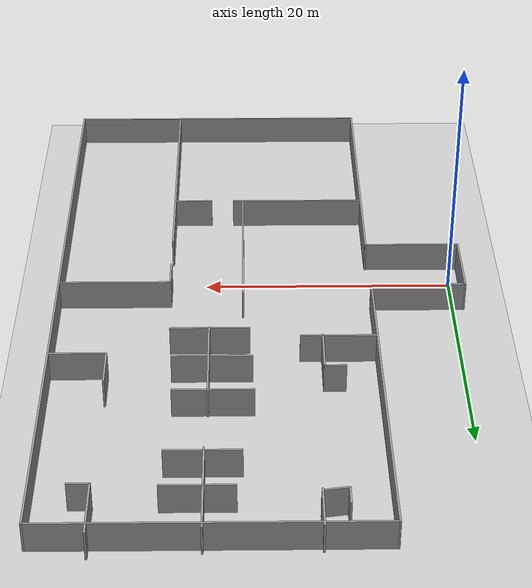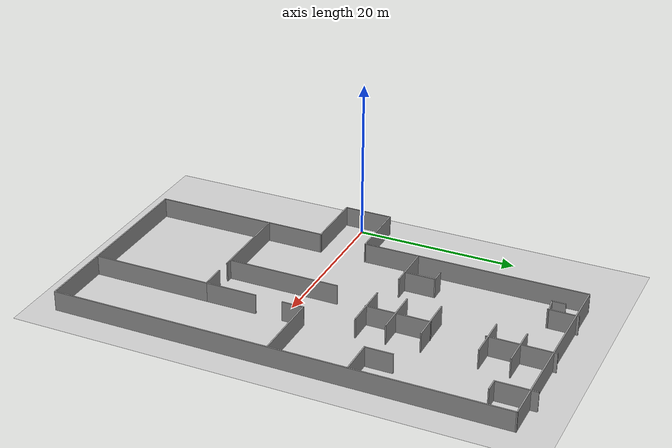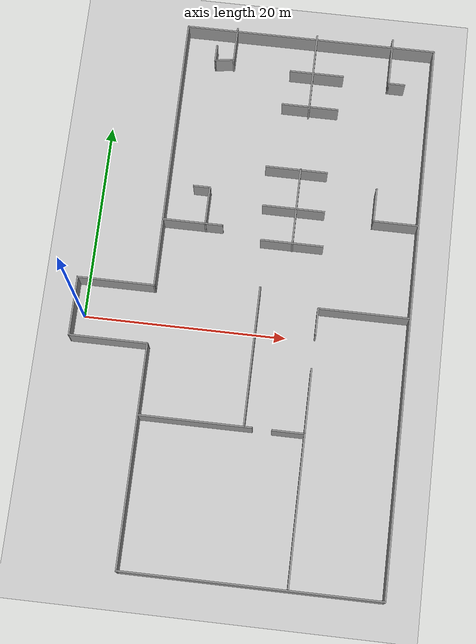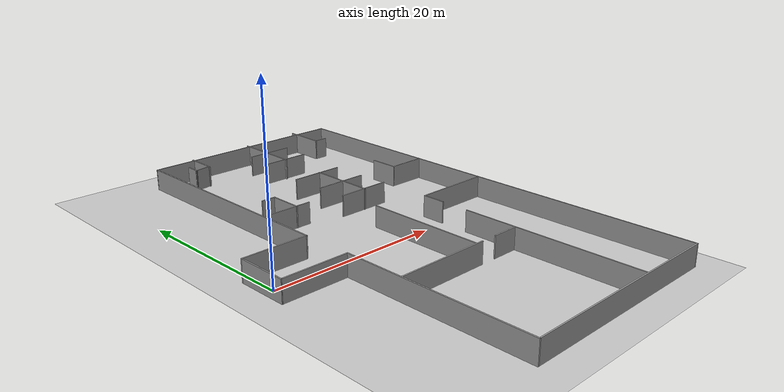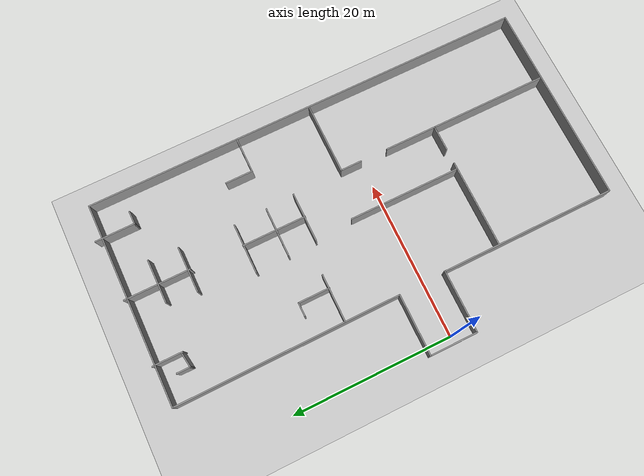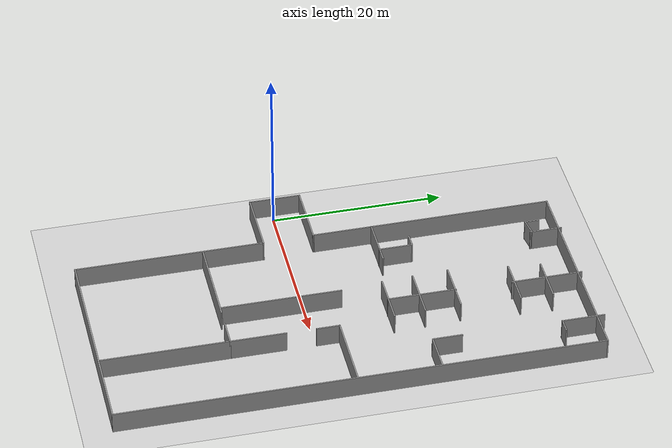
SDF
<sdf version="1.6">
 <world name="default">
  <light name="sun" type="directional">
   <pose>0 0 10 0 -0 0</pose>
   <diffuse>0.8 0.8 0.8 1</diffuse>
   <specular>0.2 0.2 0.2 1</specular>
   <attenuation>
    <range>1000</range>
    <constant>0.9</constant>
    <linear>0.01</linear>
    <quadratic>0.001</quadratic>
   </attenuation>
   <direction>-0.5 0.1 -0.9</direction>
  </light>
  <model name="ground_plane">
   <static>1</static>
   <link name="link">
    <collision name="collision">
     <geometry><plane><normal>0 0 1</normal><size>100 100</size></plane></geometry>
     <surface>
      <contact><collide_bitmask>65535</collide_bitmask></contact>
      <friction><ode><mu>100</mu><mu2>50</mu2></ode></friction>
     </surface>
    </collision>
    <visual name="visual">
     <cast_shadows>0</cast_shadows>
     <geometry><plane><normal>0 0 1</normal><size>100 100</size></plane></geometry>
     <material>
      <script><uri>file://media/materials/scripts/gazebo.material</uri><name>Gazebo/Grey</name></script>
     </material>
    </visual>
   </link>
  </model>
  <gravity>0 0 -9.8</gravity>
  <magnetic_field>6e-06 2.3e-05 -4.2e-05</magnetic_field>
  <atmosphere type="adiabatic"/>
  <physics name="default_physics" default="0" type="ode">
   <max_step_size>0.001</max_step_size>
   <real_time_factor>1</real_time_factor>
   <real_time_update_rate>1000</real_time_update_rate>
  </physics>
  <scene><ambient>0.4 0.4 0.4 1</ambient><background>0.7 0.7 0.7 1</background><shadows>1</shadows></scene>
  <audio><device>default</device></audio>
  <spherical_coordinates>
   <surface_model>EARTH_WGS84</surface_model>
   <latitude_deg>0</latitude_deg>
   <longitude_deg>0</longitude_deg>
   <elevation>0</elevation>
   <heading_deg>0</heading_deg>
  </spherical_coordinates>
  <model name="office_1">
   <pose>15.4743 3.41032 0 0 -0 0</pose>
   <link name="Wall_0">
    <collision name="Wall_0_Collision">
     <geometry><box><size>7.75 0.15 2.5</size></box></geometry>
     <pose>0 0 1.25 0 -0 0</pose>
    </collision>
    <visual name="Wall_0_Visual">
     <pose>0 0 1.25 0 -0 0</pose>
     <geometry><box><size>7.75 0.15 2.5</size></box></geometry>
     <material>
      <script><uri>file://media/materials/scripts/gazebo.material</uri><name>Gazebo/Grey</name></script>
      <ambient>1 1 1 1</ambient>
     </material>
     <meta><layer>0</layer></meta>
    </visual>
    <pose>-12.5043 -5.95032 0 0 -0 0</pose>
   </link>
   <link name="Wall_10">
    <collision name="Wall_10_Collision">
     <geometry><box><size>6 0.15 2.5</size></box></geometry>
     <pose>0 0 1.25 0 -0 0</pose>
    </collision>
    <visual name="Wall_10_Visual">
     <pose>0 0 1.25 0 -0 0</pose>
     <geometry><box><size>6 0.15 2.5</size></box></geometry>
     <material>
      <script><uri>file://media/materials/scripts/gazebo.material</uri><name>Gazebo/Grey</name></script>
      <ambient>1 1 1 1</ambient>
     </material>
     <meta><layer>0</layer></meta>
    </visual>
    <pose>-16.3956 -3.00177 0 0 -0 -1.5708</pose>
   </link>
   <link name="Wall_2">
    <collision name="Wall_2_Collision">
     <geometry><box><size>22 0.15 2.5</size></box></geometry>
     <pose>0 0 1.25 0 -0 0</pose>
    </collision>
    <visual name="Wall_2_Visual">
     <pose>0 0 1.25 0 -0 0</pose>
     <geometry><box><size>22 0.15 2.5</size></box></geometry>
     <material>
      <script><uri>file://media/materials/scripts/gazebo.material</uri><name>Gazebo/Grey</name></script>
      <ambient>1 1 1 1</ambient>
     </material>
     <meta><layer>0</layer></meta>
    </visual>
    <pose>-8.70435 -16.8753 0 0 -0 -1.5708</pose>
   </link>
   <link name="Wall_3">
    <collision name="Wall_3_Collision">
     <geometry><box><size>25.25 0.15 2.5</size></box></geometry>
     <pose>0 0 1.25 0 -0 0</pose>
    </collision>
    <visual name="Wall_3_Visual">
     <pose>0 0 1.25 0 -0 0</pose>
     <geometry><box><size>25.25 0.15 2.5</size></box></geometry>
     <material>
      <script><uri>file://media/materials/scripts/gazebo.material</uri><name>Gazebo/Grey</name></script>
      <ambient>1 1 1 1</ambient>
     </material>
     <meta><layer>0</layer></meta>
    </visual>
    <pose>3.84565 -27.8003 0 0 -0 0</pose>
   </link>
   <link name="Wall_5">
    <collision name="Wall_5_Collision">
     <geometry><box><size>55.75 0.15 2.5</size></box></geometry>
     <pose>0 0 1.25 0 -0 0</pose>
    </collision>
    <visual name="Wall_5_Visual">
     <pose>0 0 1.25 0 -0 0</pose>
     <geometry><box><size>55.75 0.15 2.5</size></box></geometry>
     <material>
      <script><uri>file://media/materials/scripts/gazebo.material</uri><name>Gazebo/Grey</name></script>
      <ambient>1 1 1 1</ambient>
     </material>
     <meta><layer>0</layer></meta>
    </visual>
    <pose>16.3957 -0.000322 0 0 -0 1.5708</pose>
   </link>
   <link name="Wall_6">
    <collision name="Wall_6_Collision">
     <geometry><box><size>25.5 0.15 2.5</size></box></geometry>
     <pose>0 0 1.25 0 -0 0</pose>
    </collision>
    <visual name="Wall_6_Visual">
     <pose>0 0 1.25 0 -0 0</pose>
     <geometry><box><size>25.5 0.15 2.5</size></box></geometry>
     <material>
      <script><uri>file://media/materials/scripts/gazebo.material</uri><name>Gazebo/Grey</name></script>
      <ambient>1 1 1 1</ambient>
     </material>
     <meta><layer>0</layer></meta>
    </visual>
    <pose>3.72065 27.7997 0 0 -0 3.14159</pose>
   </link>
   <link name="Wall_7">
    <collision name="Wall_7_Collision">
     <geometry><box><size>28.0269 0.15 2.5</size></box></geometry>
     <pose>0 0 1.25 0 -0 0</pose>
    </collision>
    <visual name="Wall_7_Visual">
     <pose>0 0 1.25 0 -0 0</pose>
     <geometry><box><size>28.0269 0.15 2.5</size></box></geometry>
     <material>
      <script><uri>file://media/materials/scripts/gazebo.material</uri><name>Gazebo/Grey</name></script>
      <ambient>1 1 1 1</ambient>
     </material>
     <meta><layer>0</layer></meta>
    </visual>
    <pose>-8.88935 13.8617 0 0 -0 -1.56613</pose>
   </link>
   <link name="Wall_8">
    <collision name="Wall_8_Collision">
     <geometry><box><size>7.7213 0.15 2.5</size></box></geometry>
     <pose>0 0 1.25 0 -0 0</pose>
    </collision>
    <visual name="Wall_8_Visual">
     <pose>0 0 1.25 0 -0 0</pose>
     <geometry><box><size>7.7213 0.15 2.5</size></box></geometry>
     <material>
      <script><uri>file://media/materials/scripts/gazebo.material</uri><name>Gazebo/Grey</name></script>
      <ambient>1 1 1 1</ambient>
     </material>
     <meta><layer>0</layer></meta>
    </visual>
    <pose>-12.61 -0.076547 0 0 -0 -3.14153</pose>
   </link>
   <static>1</static>
  </model>
  <model name="office_2">
   <pose>19.223 3.91729 0 0 -0 0</pose>
   <link name="Wall_11">
    <collision name="Wall_11_Collision">
     <geometry><box><size>6.5 0.15 2.5</size></box></geometry>
     <pose>0 0 1.25 0 -0 0</pose>
    </collision>
    <visual name="Wall_11_Visual">
     <pose>0 0 1.25 0 -0 0</pose>
     <geometry><box><size>6.5 0.15 2.5</size></box></geometry>
     <material>
      <script><uri>file://media/materials/scripts/gazebo.material</uri><name>Gazebo/Grey</name></script>
      <ambient>1 1 1 1</ambient>
     </material>
     <meta><layer>0</layer></meta>
    </visual>
    <pose>3.61683 -10.3722 0 0 -0 1.5708</pose>
   </link>
   <link name="Wall_13">
    <collision name="Wall_13_Collision">
     <geometry><box><size>2.75 0.15 2.5</size></box></geometry>
     <pose>0 0 1.25 0 -0 0</pose>
    </collision>
    <visual name="Wall_13_Visual">
     <pose>0 0 1.25 0 -0 0</pose>
     <geometry><box><size>2.75 0.15 2.5</size></box></geometry>
     <material>
      <script><uri>file://media/materials/scripts/gazebo.material</uri><name>Gazebo/Grey</name></script>
      <ambient>1 1 1 1</ambient>
     </material>
     <meta><layer>0</layer></meta>
    </visual>
    <pose>3.64403 -2.41016 0 0 -0 1.5708</pose>
   </link>
   <link name="Wall_14">
    <collision name="Wall_14_Collision">
     <geometry><box><size>9 0.15 2.5</size></box></geometry>
     <pose>0 0 1.25 0 -0 0</pose>
    </collision>
    <visual name="Wall_14_Visual">
     <pose>0 0 1.25 0 -0 0</pose>
     <geometry><box><size>9 0.15 2.5</size></box></geometry>
     <material>
      <script><uri>file://media/materials/scripts/gazebo.material</uri><name>Gazebo/Grey</name></script>
      <ambient>1 1 1 1</ambient>
     </material>
     <meta><layer>0</layer></meta>
    </visual>
    <pose>8.06904 -1.11016 0 0 -0 0</pose>
   </link>
   <link name="Wall_20">
    <collision name="Wall_20_Collision">
     <geometry><box><size>14 0.15 2.5</size></box></geometry>
     <pose>0 0 1.25 0 -0 0</pose>
    </collision>
    <visual name="Wall_20_Visual">
     <pose>0 0 1.25 0 -0 0</pose>
     <geometry><box><size>14 0.15 2.5</size></box></geometry>
     <material>
      <script><uri>file://media/materials/scripts/gazebo.material</uri><name>Gazebo/Grey</name></script>
      <ambient>1 1 1 1</ambient>
     </material>
     <meta><layer>0</layer></meta>
    </visual>
    <pose>-2.23045 -6.54514 0 0 -0 1.5708</pose>
   </link>
   <link name="Wall_29">
    <collision name="Wall_29_Collision">
     <geometry><box><size>6 0.15 2.5</size></box></geometry>
     <pose>0 0 1.25 0 -0 0</pose>
    </collision>
    <visual name="Wall_29_Visual">
     <pose>0 0 1.25 0 -0 0</pose>
     <geometry><box><size>6 0.15 2.5</size></box></geometry>
     <material>
      <script><uri>file://media/materials/scripts/gazebo.material</uri><name>Gazebo/Grey</name></script>
      <ambient>1 1 1 1</ambient>
     </material>
     <meta><layer>0</layer></meta>
    </visual>
    <pose>-9.61448 6.29314 0 0 -0 0</pose>
   </link>
   <link name="Wall_3">
    <collision name="Wall_3_Collision">
     <geometry><box><size>11 0.15 2.5</size></box></geometry>
     <pose>0 0 1.25 0 -0 0</pose>
    </collision>
    <visual name="Wall_3_Visual">
     <pose>0 0 1.25 0 -0 0</pose>
     <geometry><box><size>11 0.15 2.5</size></box></geometry>
     <material>
      <script><uri>file://media/materials/scripts/gazebo.material</uri><name>Gazebo/Grey</name></script>
      <ambient>1 1 1 1</ambient>
     </material>
     <meta><layer>0</layer></meta>
    </visual>
    <pose>-6.89347 -13.5267 0 0 -0 0</pose>
   </link>
   <link name="Wall_32">
    <collision name="Wall_32_Collision">
     <geometry><box><size>4 0.15 2.5</size></box></geometry>
     <pose>0 0 1.25 0 -0 0</pose>
    </collision>
    <visual name="Wall_32_Visual">
     <pose>0 0 1.25 0 -0 0</pose>
     <geometry><box><size>4 0.15 2.5</size></box></geometry>
     <material>
      <script><uri>file://media/materials/scripts/gazebo.material</uri><name>Gazebo/Grey</name></script>
      <ambient>1 1 1 1</ambient>
     </material>
     <meta><layer>0</layer></meta>
    </visual>
    <pose>-8.37317 8.17348 0 0 -0 1.5708</pose>
   </link>
   <link name="Wall_33">
    <collision name="Wall_33_Collision">
     <geometry><box><size>1.75 0.15 2.5</size></box></geometry>
     <pose>0 0 1.25 0 -0 0</pose>
    </collision>
    <visual name="Wall_33_Visual">
     <pose>0 0 1.25 0 -0 0</pose>
     <geometry><box><size>1.75 0.15 2.5</size></box></geometry>
     <material>
      <script><uri>file://media/materials/scripts/gazebo.material</uri><name>Gazebo/Grey</name></script>
      <ambient>1 1 1 1</ambient>
     </material>
     <meta><layer>0</layer></meta>
    </visual>
    <pose>-9.17316 10.0985 0 0 -0 3.14159</pose>
   </link>
   <link name="Wall_47">
    <collision name="Wall_47_Collision">
     <geometry><box><size>3.75 0.15 2.5</size></box></geometry>
     <pose>0 0 1.25 0 -0 0</pose>
    </collision>
    <visual name="Wall_47_Visual">
     <pose>0 0 1.25 0 -0 0</pose>
     <geometry><box><size>3.75 0.15 2.5</size></box></geometry>
     <material>
      <script><uri>file://media/materials/scripts/gazebo.material</uri><name>Gazebo/Grey</name></script>
      <ambient>1 1 1 1</ambient>
     </material>
     <meta><layer>0</layer></meta>
    </visual>
    <pose>-7.63999 25.7901 0 0 -0 -1.5708</pose>
   </link>
   <link name="Wall_48">
    <collision name="Wall_48_Collision">
     <geometry><box><size>2.05601 0.15 2.5</size></box></geometry>
     <pose>0 0 1.25 0 -0 0</pose>
    </collision>
    <visual name="Wall_48_Visual">
     <pose>0 0 1.25 0 -0 0</pose>
     <geometry><box><size>2.05601 0.15 2.5</size></box></geometry>
     <material>
      <script><uri>file://media/materials/scripts/gazebo.material</uri><name>Gazebo/Grey</name></script>
      <ambient>1 1 1 1</ambient>
     </material>
     <meta><layer>0</layer></meta>
    </visual>
    <pose>-8.5823 23.9901 0 0 -0 -2.9917</pose>
   </link>
   <link name="Wall_49">
    <collision name="Wall_49_Collision">
     <geometry><box><size>1.75 0.15 2.5</size></box></geometry>
     <pose>0 0 1.25 0 -0 0</pose>
    </collision>
    <visual name="Wall_49_Visual">
     <pose>0 0 1.25 0 -0 0</pose>
     <geometry><box><size>1.75 0.15 2.5</size></box></geometry>
     <material>
      <script><uri>file://media/materials/scripts/gazebo.material</uri><name>Gazebo/Grey</name></script>
      <ambient>1 1 1 1</ambient>
     </material>
     <meta><layer>0</layer></meta>
    </visual>
    <pose>-9.52462 24.6478 0 0 -0 1.5708</pose>
   </link>
   <link name="Wall_57">
    <collision name="Wall_57_Collision">
     <geometry><box><size>5 0.15 2.5</size></box></geometry>
     <pose>0 0 1.25 0 -0 0</pose>
    </collision>
    <visual name="Wall_57_Visual">
     <pose>0 0 1.25 0 -0 0</pose>
     <geometry><box><size>5 0.15 2.5</size></box></geometry>
     <material>
      <script><uri>file://media/materials/scripts/gazebo.material</uri><name>Gazebo/Grey</name></script>
      <ambient>1 1 1 1</ambient>
     </material>
     <meta><layer>0</layer></meta>
    </visual>
    <pose>8.35473 25.7222 0 0 -0 -1.5708</pose>
   </link>
   <link name="Wall_58">
    <collision name="Wall_58_Collision">
     <geometry><box><size>1.75 0.15 2.5</size></box></geometry>
     <pose>0 0 1.25 0 -0 0</pose>
    </collision>
    <visual name="Wall_58_Visual">
     <pose>0 0 1.25 0 -0 0</pose>
     <geometry><box><size>1.75 0.15 2.5</size></box></geometry>
     <material>
      <script><uri>file://media/materials/scripts/gazebo.material</uri><name>Gazebo/Grey</name></script>
      <ambient>1 1 1 1</ambient>
     </material>
     <meta><layer>0</layer></meta>
    </visual>
    <pose>9.15472 23.2972 0 0 -0 0</pose>
   </link>
   <link name="Wall_60">
    <collision name="Wall_60_Collision">
     <geometry><box><size>8.25 0.15 2.5</size></box></geometry>
     <pose>0 0 1.25 0 -0 0</pose>
    </collision>
    <visual name="Wall_60_Visual">
     <pose>0 0 1.25 0 -0 0</pose>
     <geometry><box><size>8.25 0.15 2.5</size></box></geometry>
     <material>
      <script><uri>file://media/materials/scripts/gazebo.material</uri><name>Gazebo/Grey</name></script>
      <ambient>1 1 1 1</ambient>
     </material>
     <meta><layer>0</layer></meta>
    </visual>
    <pose>0.578927 23.6502 0 0 -0 -1.5708</pose>
   </link>
   <link name="Wall_65">
    <collision name="Wall_65_Collision">
     <geometry><box><size>5.75 0.15 2.5</size></box></geometry>
     <pose>0 0 1.25 0 -0 0</pose>
    </collision>
    <visual name="Wall_65_Visual">
     <pose>0 0 1.25 0 -0 0</pose>
     <geometry><box><size>5.75 0.15 2.5</size></box></geometry>
     <material>
      <script><uri>file://media/materials/scripts/gazebo.material</uri><name>Gazebo/Grey</name></script>
      <ambient>1 1 1 1</ambient>
     </material>
     <meta><layer>0</layer></meta>
    </visual>
    <pose>0.659823 19.8318 0 0 -0 0</pose>
   </link>
   <link name="Wall_69">
    <collision name="Wall_69_Collision">
     <geometry><box><size>5.5 0.15 2.5</size></box></geometry>
     <pose>0 0 1.25 0 -0 0</pose>
    </collision>
    <visual name="Wall_69_Visual">
     <pose>0 0 1.25 0 -0 0</pose>
     <geometry><box><size>5.5 0.15 2.5</size></box></geometry>
     <material>
      <script><uri>file://media/materials/scripts/gazebo.material</uri><name>Gazebo/Grey</name></script>
      <ambient>1 1 1 1</ambient>
     </material>
     <meta><layer>0</layer></meta>
    </visual>
    <pose>0.961778 23.5321 0 0 -0 0</pose>
   </link>
   <link name="Wall_71">
    <collision name="Wall_71_Collision">
     <geometry><box><size>8 0.15 2.5</size></box></geometry>
     <pose>0 0 1.25 0 -0 0</pose>
    </collision>
    <visual name="Wall_71_Visual">
     <pose>0 0 1.25 0 -0 0</pose>
     <geometry><box><size>8 0.15 2.5</size></box></geometry>
     <material>
      <script><uri>file://media/materials/scripts/gazebo.material</uri><name>Gazebo/Grey</name></script>
      <ambient>1 1 1 1</ambient>
     </material>
     <meta><layer>0</layer></meta>
    </visual>
    <pose>0.422198 9.09895 0 0 -0 -1.5708</pose>
   </link>
   <link name="Wall_73">
    <collision name="Wall_73_Collision">
     <geometry><box><size>6.25 0.15 2.5</size></box></geometry>
     <pose>0 0 1.25 0 -0 0</pose>
    </collision>
    <visual name="Wall_73_Visual">
     <pose>0 0 1.25 0 -0 0</pose>
     <geometry><box><size>6.25 0.15 2.5</size></box></geometry>
     <material>
      <script><uri>file://media/materials/scripts/gazebo.material</uri><name>Gazebo/Grey</name></script>
      <ambient>1 1 1 1</ambient>
     </material>
     <meta><layer>0</layer></meta>
    </visual>
    <pose>0.373353 5.22741 0 0 -0 0</pose>
   </link>
   <link name="Wall_8">
    <collision name="Wall_8_Collision">
     <geometry><box><size>3.25 0.15 2.5</size></box></geometry>
     <pose>0 0 1.25 0 -0 0</pose>
    </collision>
    <visual name="Wall_8_Visual">
     <pose>0 0 1.25 0 -0 0</pose>
     <geometry><box><size>3.25 0.15 2.5</size></box></geometry>
     <material>
      <script><uri>file://media/materials/scripts/gazebo.material</uri><name>Gazebo/Grey</name></script>
      <ambient>1 1 1 1</ambient>
     </material>
     <meta><layer>0</layer></meta>
    </visual>
    <pose>2.06683 -13.5472 0 0 -0 0</pose>
   </link>
   <link name="Wall_82">
    <collision name="Wall_82_Collision">
     <geometry><box><size>6.25 0.15 2.5</size></box></geometry>
     <pose>0 0 1.25 0 -0 0</pose>
    </collision>
    <visual name="Wall_82_Visual">
     <pose>0 0 1.25 0 -0 0</pose>
     <geometry><box><size>6.25 0.15 2.5</size></box></geometry>
     <material>
      <script><uri>file://media/materials/scripts/gazebo.material</uri><name>Gazebo/Grey</name></script>
      <ambient>1 1 1 1</ambient>
     </material>
     <meta><layer>0</layer></meta>
    </visual>
    <pose>0.163686 8.82451 0 0 -0 0</pose>
   </link>
   <link name="Wall_84">
    <collision name="Wall_84_Collision">
     <geometry><box><size>6.25 0.15 2.5</size></box></geometry>
     <pose>0 0 1.25 0 -0 0</pose>
    </collision>
    <visual name="Wall_84_Visual">
     <pose>0 0 1.25 0 -0 0</pose>
     <geometry><box><size>6.25 0.15 2.5</size></box></geometry>
     <material>
      <script><uri>file://media/materials/scripts/gazebo.material</uri><name>Gazebo/Grey</name></script>
      <ambient>1 1 1 1</ambient>
     </material>
     <meta><layer>0</layer></meta>
    </visual>
    <pose>0.015128 12.9567 0 0 -0 0</pose>
   </link>
   <link name="Wall_89">
    <collision name="Wall_89_Collision">
     <geometry><box><size>4.5 0.15 2.5</size></box></geometry>
     <pose>0 0 1.25 0 -0 0</pose>
    </collision>
    <visual name="Wall_89_Visual">
     <pose>0 0 1.25 0 -0 0</pose>
     <geometry><box><size>4.5 0.15 2.5</size></box></geometry>
     <material>
      <script><uri>file://media/materials/scripts/gazebo.material</uri><name>Gazebo/Grey</name></script>
      <ambient>1 1 1 1</ambient>
     </material>
     <meta><layer>0</layer></meta>
    </visual>
    <pose>10.3645 8.4266 0 0 -0 0</pose>
   </link>
   <link name="Wall_9">
    <collision name="Wall_9_Collision">
     <geometry><box><size>14.75 0.15 2.5</size></box></geometry>
     <pose>0 0 1.25 0 -0 0</pose>
    </collision>
    <visual name="Wall_9_Visual">
     <pose>0 0 1.25 0 -0 0</pose>
     <geometry><box><size>14.75 0.15 2.5</size></box></geometry>
     <material>
      <script><uri>file://media/materials/scripts/gazebo.material</uri><name>Gazebo/Grey</name></script>
      <ambient>1 1 1 1</ambient>
     </material>
     <meta><layer>0</layer></meta>
    </visual>
    <pose>3.61683 -20.8472 0 0 -0 -1.5708</pose>
   </link>
   <link name="Wall_91">
    <collision name="Wall_91_Collision">
     <geometry><box><size>3.5 0.15 2.5</size></box></geometry>
     <pose>0 0 1.25 0 -0 0</pose>
    </collision>
    <visual name="Wall_91_Visual">
     <pose>0 0 1.25 0 -0 0</pose>
     <geometry><box><size>3.5 0.15 2.5</size></box></geometry>
     <material>
      <script><uri>file://media/materials/scripts/gazebo.material</uri><name>Gazebo/Grey</name></script>
      <ambient>1 1 1 1</ambient>
     </material>
     <meta><layer>0</layer></meta>
    </visual>
    <pose>8.18948 10.1016 0 0 -0 1.5708</pose>
   </link>
   <static>1</static>
  </model>
 </world>
</sdf>
